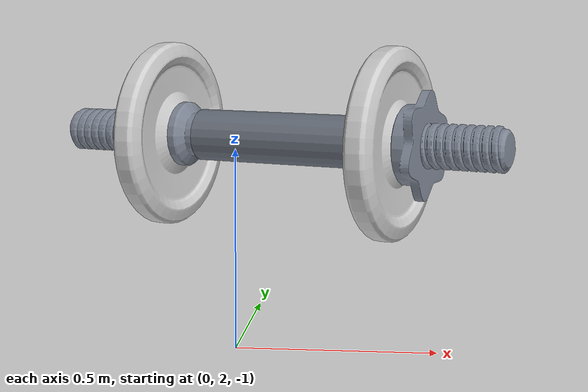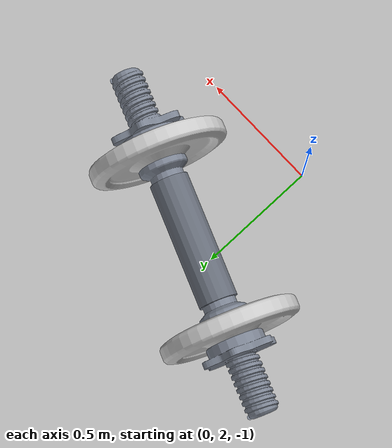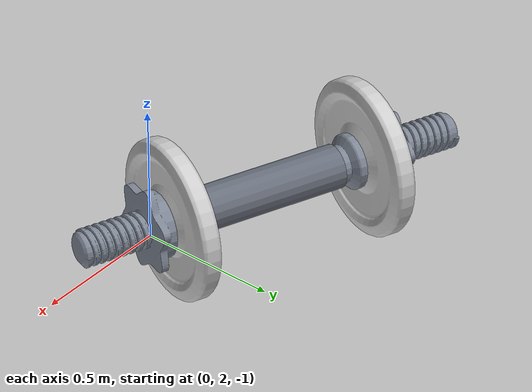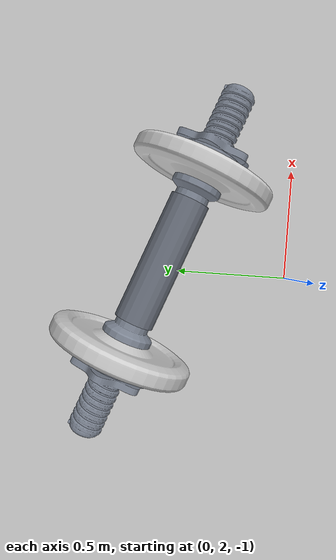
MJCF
<mujoco model="weight_5">
  <compiler angle="radian" meshdir="assets" texturedir="assets" autolimits="true"/>
  <default>
    <default class="visual">
      <geom group="2" type="mesh" contype="0" conaffinity="0"/>
    </default>
    <default class="collision">
      <geom group="3" type="mesh"  solimp="0.95 0.99 0.001" solref="0.004 1" friction="1.0 0.005 0.0001"/>
    </default>
  </default>
  <asset>
    <material name="Metal_black" specular="0.5" shininess="0.36" rgba="0.800000 0.800000 0.800000 1.000000"/>
    <material name="Stainless_Steel" specular="0.5" shininess="0.7225" rgba="0.492784 0.524263 0.580810 1.000000"/>
    <material name="Stainless_Steel_grip" specular="0.5" shininess="0.49" rgba="0.407240 0.433089 0.479510 1.000000"/>
    <mesh file="weight_5_0.obj"/>
    <mesh file="weight_5_1.obj"/>
    <mesh file="weight_5_2.obj"/>
    <mesh file="weight_5_collision_0.obj"/>
    <mesh file="weight_5_collision_1.obj"/>
    <mesh file="weight_5_collision_2.obj"/>
    <mesh file="weight_5_collision_3.obj"/>
    <mesh file="weight_5_collision_4.obj"/>
    <mesh file="weight_5_collision_5.obj"/>
    <mesh file="weight_5_collision_6.obj"/>
    <mesh file="weight_5_collision_7.obj"/>
    <mesh file="weight_5_collision_8.obj"/>
    <mesh file="weight_5_collision_9.obj"/>
    <mesh file="weight_5_collision_10.obj"/>
    <mesh file="weight_5_collision_11.obj"/>
    <mesh file="weight_5_collision_12.obj"/>
    <mesh file="weight_5_collision_13.obj"/>
    <mesh file="weight_5_collision_14.obj"/>
    <mesh file="weight_5_collision_15.obj"/>
    <mesh file="weight_5_collision_16.obj"/>
    <mesh file="weight_5_collision_17.obj"/>
    <mesh file="weight_5_collision_18.obj"/>
    <mesh file="weight_5_collision_19.obj"/>
    <mesh file="weight_5_collision_20.obj"/>
    <mesh file="weight_5_collision_21.obj"/>
    <mesh file="weight_5_collision_22.obj"/>
    <mesh file="weight_5_collision_23.obj"/>
    <mesh file="weight_5_collision_24.obj"/>
    <mesh file="weight_5_collision_25.obj"/>
    <mesh file="weight_5_collision_26.obj"/>
    <mesh file="weight_5_collision_27.obj"/>
    <mesh file="weight_5_collision_28.obj"/>
    <mesh file="weight_5_collision_29.obj"/>
    <mesh file="weight_5_collision_30.obj"/>
    <mesh file="weight_5_collision_31.obj"/>
    <mesh file="weight_5_collision_32.obj"/>
    <mesh file="weight_5_collision_33.obj"/>
    <mesh file="weight_5_collision_34.obj"/>
    <mesh file="weight_5_collision_35.obj"/>
    <mesh file="weight_5_collision_36.obj"/>
  </asset>
  <worldbody>
    <body name="weight_5">
      <geom mesh="weight_5_0" material="Stainless_Steel_grip" class="visual"/>
      <geom mesh="weight_5_1" material="Metal_black" class="visual"/>
      <geom mesh="weight_5_2" material="Stainless_Steel" class="visual"/>
      <geom mesh="weight_5_collision_0" rgba="0.31057838074632216 0.3456174105589874 0.6624881886840376 1" class="collision"/>
      <geom mesh="weight_5_collision_1" rgba="0.38814316683547234 0.3814254863279124 0.7767863659823739 1" class="collision"/>
      <geom mesh="weight_5_collision_2" rgba="0.8744982299547431 0.12594804026004325 0.9428780806164899 1" class="collision"/>
      <geom mesh="weight_5_collision_3" rgba="0.5124840754334938 0.6434263668796234 0.5578211163371699 1" class="collision"/>
      <geom mesh="weight_5_collision_4" rgba="0.06817661386925644 0.740944066442183 0.9845571015717038 1" class="collision"/>
      <geom mesh="weight_5_collision_5" rgba="0.8109684511177461 0.10079373365448518 0.4034184254826334 1" class="collision"/>
      <geom mesh="weight_5_collision_6" rgba="0.7608450802120424 0.30799609584589527 0.7149487765430103 1" class="collision"/>
      <geom mesh="weight_5_collision_7" rgba="0.09414901505892326 0.06528135814936653 0.015884713171032905 1" class="collision"/>
      <geom mesh="weight_5_collision_8" rgba="0.40785591269119703 0.02356382261906831 0.16132240489489036 1" class="collision"/>
      <geom mesh="weight_5_collision_9" rgba="0.16497641665123342 0.18579641489404486 0.7188636931463093 1" class="collision"/>
      <geom mesh="weight_5_collision_10" rgba="0.13660182505833685 0.6151168512126296 0.5078933139233687 1" class="collision"/>
      <geom mesh="weight_5_collision_11" rgba="0.8975706912218827 0.2523681213818534 0.7847949900787243 1" class="collision"/>
      <geom mesh="weight_5_collision_12" rgba="0.9332631522232445 0.34043546490535015 0.27649016586964936 1" class="collision"/>
      <geom mesh="weight_5_collision_13" rgba="0.5542459591084362 0.04841008169564731 0.6204578854601205 1" class="collision"/>
      <geom mesh="weight_5_collision_14" rgba="0.1150760572657813 0.11107330895091039 0.5790891074523916 1" class="collision"/>
      <geom mesh="weight_5_collision_15" rgba="0.05229053136282091 0.14299692792044694 0.8911223936578117 1" class="collision"/>
      <geom mesh="weight_5_collision_16" rgba="0.39085874956433675 0.13868425290127773 0.40861878317250566 1" class="collision"/>
      <geom mesh="weight_5_collision_17" rgba="0.7900912799694848 0.7141604754427597 0.11802845347999236 1" class="collision"/>
      <geom mesh="weight_5_collision_18" rgba="0.8866919416022884 0.38295474462655377 0.6843846785808394 1" class="collision"/>
      <geom mesh="weight_5_collision_19" rgba="0.353126462669594 0.18867158351088475 0.45725886740291455 1" class="collision"/>
      <geom mesh="weight_5_collision_20" rgba="0.8654780950421633 0.09907521116105333 0.6669279374626685 1" class="collision"/>
      <geom mesh="weight_5_collision_21" rgba="0.8391599307925113 0.9698743298619992 0.009667082780666747 1" class="collision"/>
      <geom mesh="weight_5_collision_22" rgba="0.6722456728152353 0.4065055523538509 0.1594227127925928 1" class="collision"/>
      <geom mesh="weight_5_collision_23" rgba="0.6658292205906062 0.3920078752276287 0.2577286373963056 1" class="collision"/>
      <geom mesh="weight_5_collision_24" rgba="0.5733206065449526 0.1279013771591374 0.11137835601046475 1" class="collision"/>
      <geom mesh="weight_5_collision_25" rgba="0.313050495644152 0.674317202382713 0.7534134267082534 1" class="collision"/>
      <geom mesh="weight_5_collision_26" rgba="0.1594468120853082 0.8676345754817496 0.23984835591869547 1" class="collision"/>
      <geom mesh="weight_5_collision_27" rgba="0.2884859785912638 0.7429676035624416 0.18281827723136823 1" class="collision"/>
      <geom mesh="weight_5_collision_28" rgba="0.9222572116906798 0.33929459536741813 0.2959632054537116 1" class="collision"/>
      <geom mesh="weight_5_collision_29" rgba="0.6823263357657128 0.8882147078526632 0.23577455881050902 1" class="collision"/>
      <geom mesh="weight_5_collision_30" rgba="0.5161479055583633 0.8965570069113672 0.08653583349865435 1" class="collision"/>
      <geom mesh="weight_5_collision_31" rgba="0.15318417905039894 0.21590135618238526 0.0312078759893456 1" class="collision"/>
      <geom mesh="weight_5_collision_32" rgba="0.3693133921181453 0.06919986408581813 0.06305299925749996 1" class="collision"/>
      <geom mesh="weight_5_collision_33" rgba="0.9348634011311744 0.4262212844829427 0.005618688491093038 1" class="collision"/>
      <geom mesh="weight_5_collision_34" rgba="0.04921889569781579 0.045311749746857366 0.7495615601784329 1" class="collision"/>
      <geom mesh="weight_5_collision_35" rgba="0.5979412478921305 0.9583434860555419 0.0026860103139991764 1" class="collision"/>
      <geom mesh="weight_5_collision_36" rgba="0.1605044583827575 0.006475032769496125 0.6568345785522407 1" class="collision"/>
    </body>
  </worldbody>
</mujoco>
